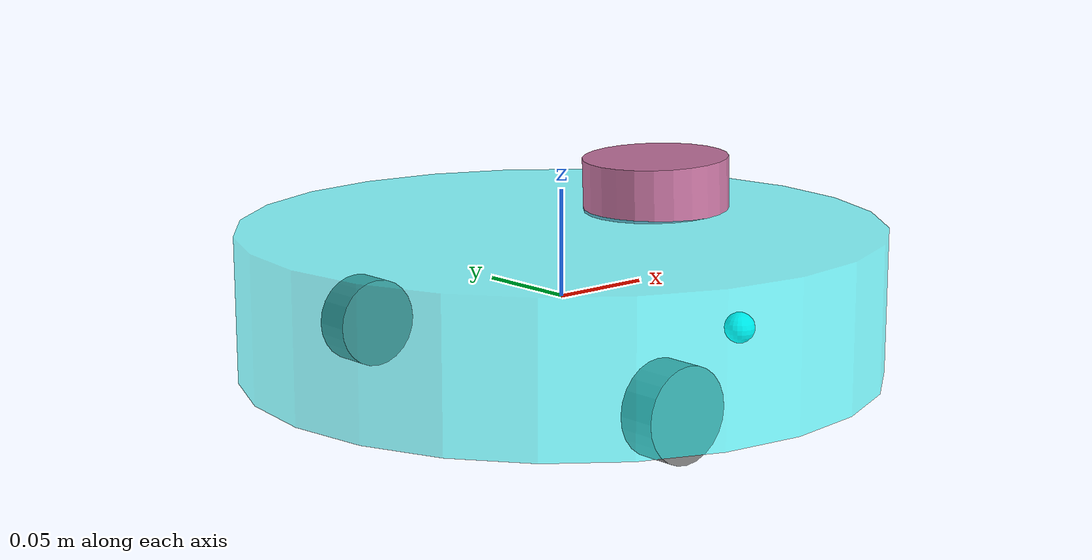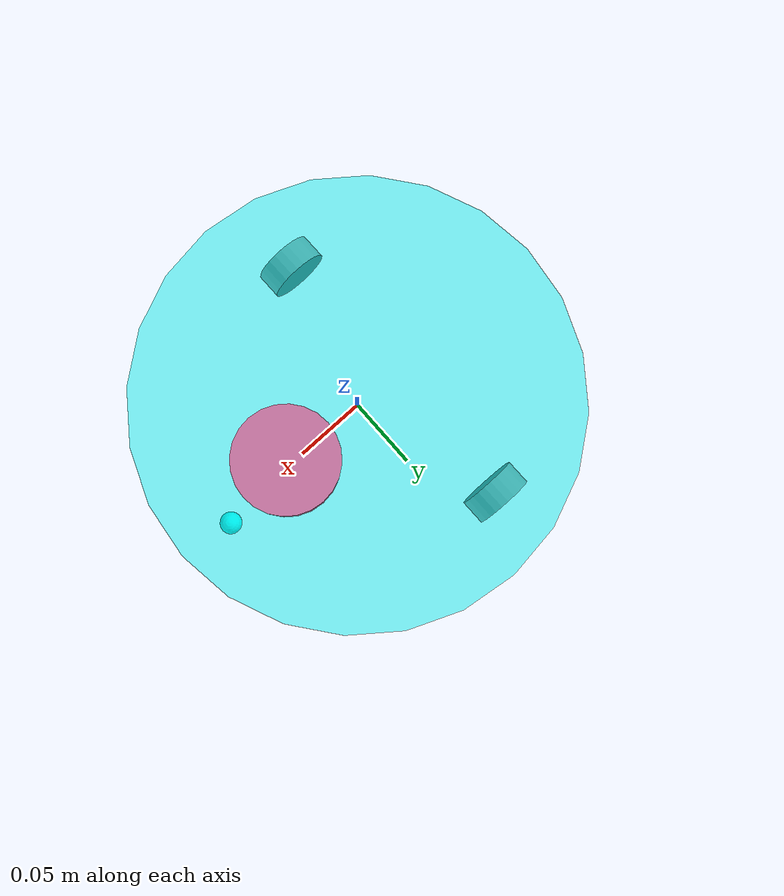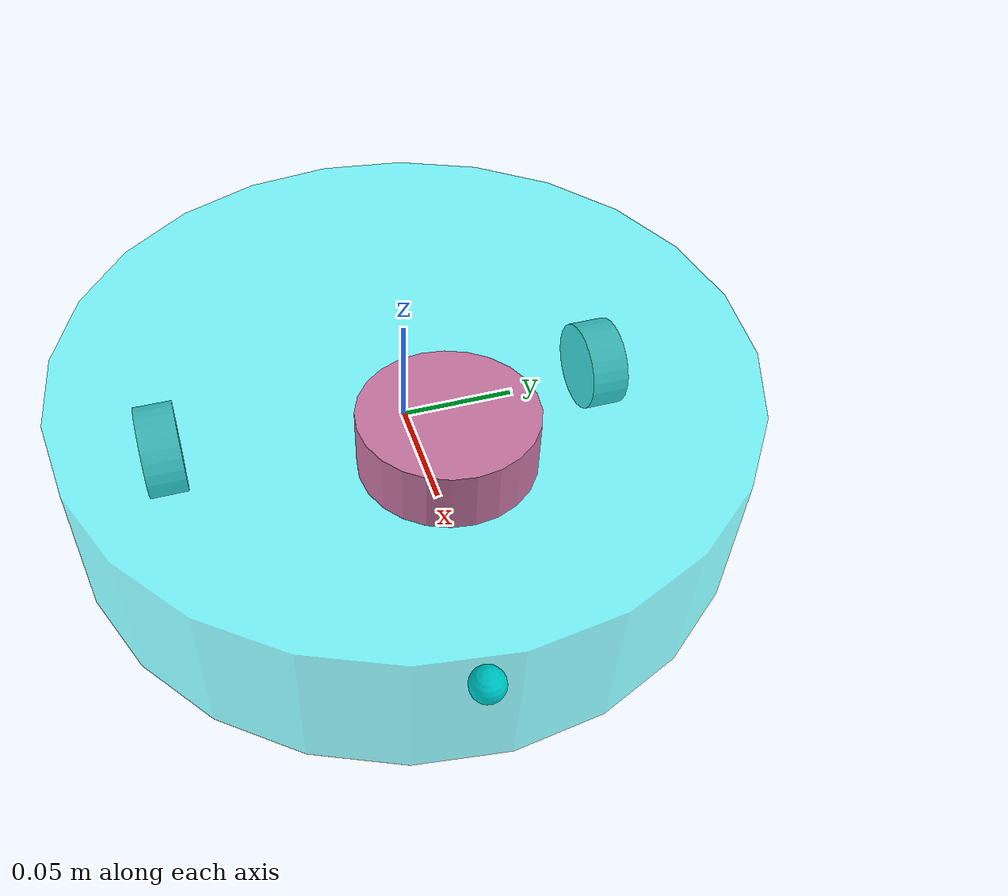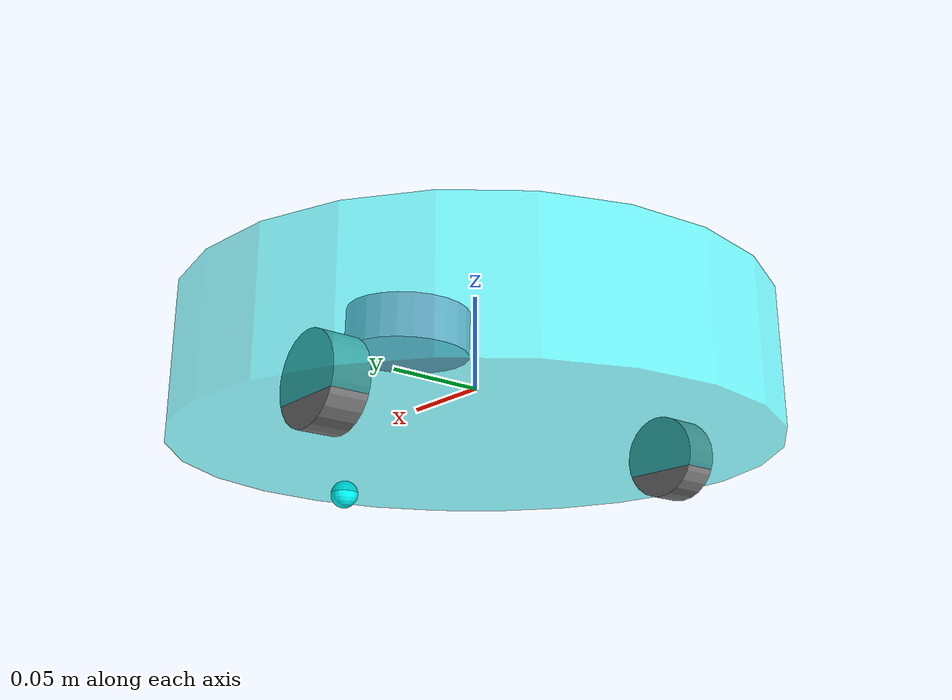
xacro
<?xml version="1.0"?>
<robot name="vac_bot" xmlns:xacro="http://ros.org/wiki/xacro">
    <xacro:property name="chassis_radius" value="0.150"/>
    <xacro:property name="chassis_height" value="0.068"/>

    <xacro:property name="wheel_radius" value="0.0215"/>
    <xacro:property name="wheel_width" value="0.018"/>

    <xacro:property name="wheel_dy" value="0.107954"/>
    <xacro:property name="wheel_dx" value="-0.033046"/>
    <xacro:property name="wheel_dz" value="-0.026"/>

    <xacro:property name="caster_dx" value="0.120"/>
    <xacro:property name="caster_dz" value="-0.0350625"/>
    <xacro:property name="caster_radius" value="0.0079375"/>

    <xacro:macro name="box_inertia" params="m w h d">
        <inertial>
            <origin xyz="0 0 0" rpy="${pi/2} 0 ${pi/2}"/>
            <mass value="${m}"/>
            <inertia ixx="${(m/12) * (h*h + d*d)}" ixy="0.0" ixz="0.0" iyy="${(m/12) * (w*w + d*d)}" iyz="0.0" izz="${(m/12) * (w*w + h*h)}"/>
        </inertial>
    </xacro:macro>

    <xacro:macro name="cylinder_inertia" params="m r h">
        <inertial>
            <origin xyz="0 0 0" rpy="${pi/2} 0 0" />
            <mass value="${m}"/>
            <inertia ixx="${(m/12) * (3*r*r + h*h)}" ixy = "0" ixz = "0" iyy="${(m/12) * (3*r*r + h*h)}" iyz = "0" izz="${(m/2) * (r*r)}"/>
        </inertial>
    </xacro:macro>

    <xacro:macro name="sphere_inertia" params="m r">
        <inertial>
            <mass value="${m}"/>
            <inertia ixx="${(2/5) * m * (r*r)}" ixy="0.0" ixz="0.0" iyy="${(2/5) * m * (r*r)}" iyz="0.0" izz="${(2/5) * m * (r*r)}"/>
        </inertial>
    </xacro:macro>

    <link name="base_link"/>

    <link name="base_footprint"/>

    <joint name="base_footprint_joint" type="fixed">
        <parent link="base_link"/>
        <child link="base_footprint"/>
        <origin xyz="0 0 0" rpy="0 0 0"/>
    </joint>

    <link name="chassis">
        <visual>
            <geometry>
                <cylinder radius="${chassis_radius}" length="${chassis_height}"/>
            </geometry>
            <material name="Cyan">
                <color rgba="0 1.0 1.0 0.5"/>
            </material>
        </visual>
        <collision>
            <origin xyz="0 0 0" rpy="${pi/2} 0 0"/>
            <geometry>
                <box size="${chassis_radius*2.0} ${chassis_height} ${chassis_radius*2.0}"/>
                <cylinder radius="${chassis_radius}" length="${chassis_height}"/>
            </geometry>
        </collision>
        <xacro:box_inertia m="1" w="${chassis_radius*2}" d="${chassis_radius*2}" h="${chassis_height}"/>
    </link>

    <joint name="chassis_joint" type="fixed">
        <parent link="base_link"/>
        <child link="chassis"/>
        <origin xyz="0 0 0"/>
    </joint>

    <link name="left_wheel_link">
        <visual>
            <origin xyz="0 0 0" rpy="0 0 0"/>
            <geometry>
                <cylinder radius="${wheel_radius}" length="${wheel_width}"/>
            </geometry>
            <material name="Gray">
                <color rgba="0.5 0.5 0.5 1.0"/>
            </material>
        </visual>
        <collision>
            <origin xyz="0 0 0" rpy="0 0 0"/>
            <geometry>
                <cylinder radius="${wheel_radius}" length="${wheel_width}"/>
            </geometry>
        </collision>
        <xacro:cylinder_inertia m="0.01" r="${wheel_radius}" h="${wheel_width}"/>
    </link>

    <link name="right_wheel_link">
            <visual>
            <origin xyz="0 0 0" rpy="0 0 0"/>
            <geometry>
                <cylinder radius="${wheel_radius}" length="${wheel_width}"/>
            </geometry>
            <material name="Gray">
                <color rgba="0.5 0.5 0.5 1.0"/>
            </material>
        </visual>
        <collision>
            <origin xyz="0 0 0" rpy="0 0 0"/>
            <geometry>
                <cylinder radius="${wheel_radius}" length="${wheel_width}"/>
            </geometry>
        </collision>
        <xacro:cylinder_inertia m="0.01" r="${wheel_radius}" h="${wheel_width}"/>
    </link>

    <joint name="left_wheel_joint" type="continuous">
        <parent link="chassis"/>
        <child link="left_wheel_link"/>
        <origin xyz="${wheel_dx} ${wheel_dy} ${wheel_dz}" rpy="-${pi/2} 0 0"/>
        <axis xyz="0 0 1"/>
    </joint>

    <joint name="right_wheel_joint" type="continuous">
        <parent link="chassis"/>
        <child link="right_wheel_link"/>
        <origin xyz="${wheel_dx} ${-wheel_dy} ${wheel_dz}" rpy="-${pi/2} 0 0"/>
        <axis xyz="0 0 1"/>
    </joint>

    <link name="front_caster">
        <visual>
            <geometry>
                <sphere radius="${caster_radius}"/>
            </geometry>
            <material name="Cyan">
                <color rgba="0 1.0 1.0 1.0"/>
            </material>
        </visual>
        <collision>
            <origin xyz="0 0 0" rpy="0 0 0"/>
            <geometry>
                <sphere radius="${caster_radius}"/>
            </geometry>
        </collision>
        <xacro:sphere_inertia m="0.005" r="${caster_radius}"/>
    </link>

    <joint name="caster_joint" type="fixed">
        <parent link="chassis"/>
        <child link="front_caster"/>
        <origin xyz="${caster_dx} 0.0 ${caster_dz}" rpy="0 0 0"/>
    </joint>

    <link name="lidar_link">
        <inertial>
            <origin xyz="0 0 0" rpy="0 0 0"/>
            <mass value="0.125"/>
            <inertia ixx="0.001"  ixy="0"  ixz="0" iyy="0.001" iyz="0" izz="0.001" />
        </inertial>
        <collision>
            <origin xyz="0 0 0" rpy="0 0 0"/>
            <geometry>
                <cylinder radius="0.035" length="0.025"/>
            </geometry>
        </collision>
        <visual>
            <origin xyz="0 0 0" rpy="0 0 0"/>
            <geometry>
                <cylinder radius="0.035" length="0.025"/>
            </geometry>
        </visual>
    </link>
    <joint name="lidar_joint" type="fixed">
        <parent link="base_link"/>
        <child link="lidar_link"/>
        <origin xyz="0.06 0 0.0465" rpy="0 -0.04 0"/>
    </joint>

    <gazebo reference="lidar_link">
        <sensor name="laser" type="gpu_lidar">
            <pose> 0 0 0 0 0 0 </pose>
            <visualize>true</visualize>
            <update_rate>10</update_rate>
            <lidar>
                <scan>
                    <horizontal>
                        <samples>360</samples>
                        <min_angle>-3.14</min_angle>
                        <max_angle>3.14</max_angle>
                    </horizontal>
                </scan>
                <range>
                    <min>0.15</min>
                    <max>12</max>
                </range>
            </lidar>
            <topic>scan</topic>
            <gz_frame_id>lidar_link</gz_frame_id>
        </sensor>
    </gazebo>

    <ros2_control name="GazeboSimSystem" type="system">
        <hardware>
            <plugin>gz_ros2_control/GazeboSimSystem</plugin>
        </hardware>

        <joint name="left_wheel_joint">
            <command_interface name="velocity"/>

            <state_interface name="position"/>
            <state_interface name="velocity"/>
        </joint>
        <joint name="right_wheel_joint">
            <command_interface name="velocity"/>

            <state_interface name="position"/>
            <state_interface name="velocity"/>
        </joint>
    </ros2_control>

    <gazebo>
        <plugin filename="gz_ros2_control-system" name="gz_ros2_control::GazeboSimROS2ControlPlugin">
            <parameters>$(find vacbot)/config/ros2_controllers.yaml</parameters>
        </plugin>

        <plugin filename="gz-sim-joint-state-publisher-system"
            name="gz::sim::systems::JointStatePublisher">
            <topic>joint_states</topic>
            <joint_name>left_wheel_joint</joint_name>
            <joint_name>right_wheel_joint</joint_name>
        </plugin>
    </gazebo>
</robot>
